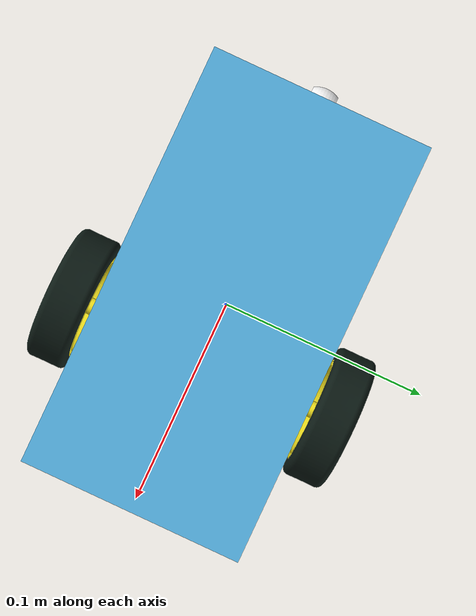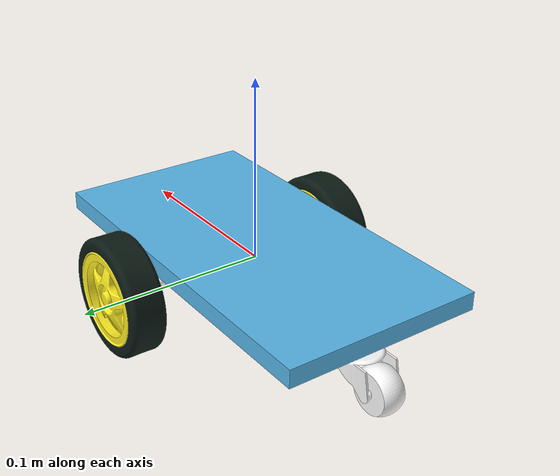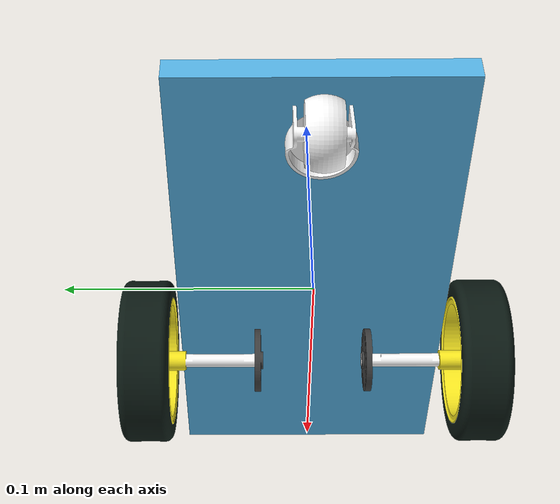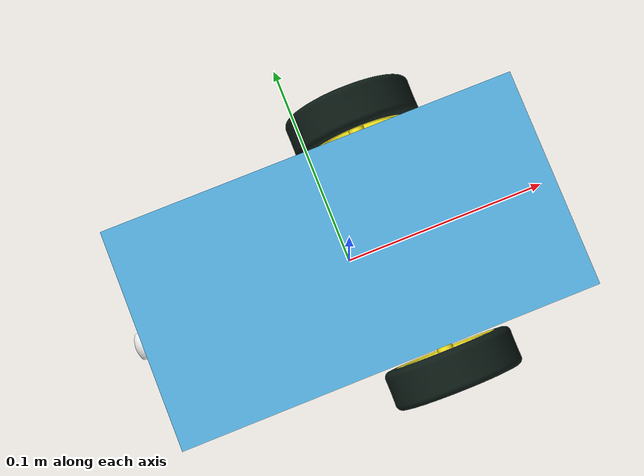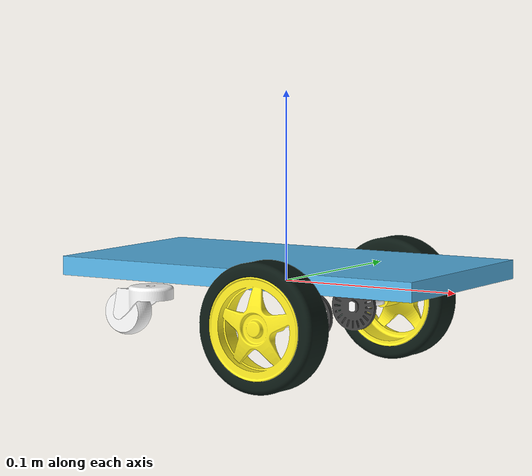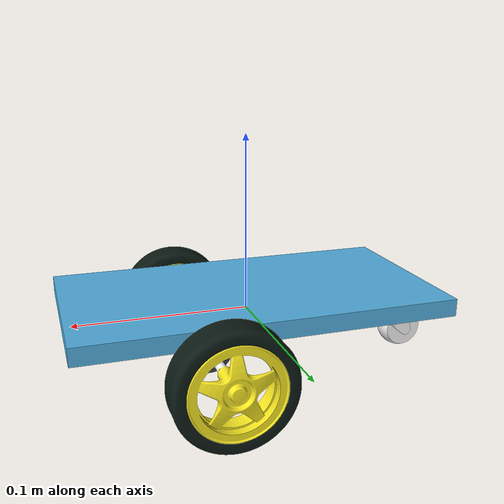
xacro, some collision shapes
<?xml version="1.0"?>

<robot xmlns:xacro="http://ros.org/wiki/xacro"  name="littlebot">

  <!-- Default arguments -->
  <xacro:arg name="use_sim" default="false" />
  <xacro:arg name="prefix" default="littlebot" />

  <!-- Included URDF XACRO Files -->
  <xacro:include filename="$(find littlebot_description)/urdf/littlebot_body.urdf.xacro" />
  <xacro:include filename="$(find littlebot_description)/urdf/littlebot_wheel.urdf.xacro" />

  <!-- Included GAZEBO XACRO Files -->
  <xacro:include filename="$(find littlebot_description)/gazebo/littlebot.gazebo.xacro" />

  <!-- Included ROS2_CONTROL XACRO Files -->
  <xacro:include filename="$(find littlebot_description)/ros2_control/littlebot.ros2_control.xacro" />

  <!-- Littlebot's robot description -->
  <!-- Body model -->
  <xacro:littlebot_body />

  <!-- Whells models -->
  <xacro:littlebot_wheel side_wheel="left">
    <origin xyz="0.0 0 0" rpy="0 0 0"/>
    <origin xyz="0.0281 0.067 -0.01425" rpy="0 0 0" />
  </xacro:littlebot_wheel>

  <xacro:littlebot_wheel side_wheel="right">
    <origin xyz="0 0 0" rpy="0 0 3.142"/>
    <origin xyz="0.0281 -0.067 -0.01425" rpy="0 0 0" />
  </xacro:littlebot_wheel>

  <!-- Sonar models-->

  <!-- Load Gazebo plugins -->
  <xacro:if value="$(arg use_sim)">
    <xacro:littlebot_gazebo/>
  </xacro:if>

  <!-- Load ROS2 Control plugins -->
  <xacro:unless value="$(arg use_sim)">
    <xacro:littlebot_control/>
  </xacro:unless>

</robot>

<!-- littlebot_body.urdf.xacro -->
<robot xmlns:xacro="http://ros.org/wiki/xacro"  name="littlebot_body">
  <xacro:macro name="littlebot_body" >

    <!-- Modelagem base_link "link" -->
    <link name="base_link">
    </link>

    <!-- Robot Footprint -->

    <!-- Modelagem chassis_link "link" and "joint"-->
    <link name="chassis_link">
      <visual>
        <origin xyz="0 0 0" rpy="0 0 0" />
        <geometry>
          <mesh filename="file://$(find littlebot_description)/meshes/littlebot.dae" />
        </geometry>
      </visual>

      <collision>
        <origin xyz="0 0 0.007" rpy="0 0 0" />
        <geometry>
          <box size="0.21 0.11 0.01"/>
        </geometry>
      </collision>

      <inertial>
        <origin xyz="0 0 0" rpy="0 0 0"/>
        <mass value="0.19357368"/>
        <inertia ixx="1.84569610e-4"  ixy="-4.09475462e-6"  ixz="-2.91063667e-5"
                                      iyy="7.65700035e-4"   iyz="2.32776537e-8"
                                                            izz="9.00861891e-4" />
      </inertial>
    </link>

    <joint name="base_link_to_chassis_link" type="fixed">
      <parent link="base_link"/>
      <child link="chassis_link"/>
      <origin xyz="0.0 0.0 0.0" rpy="0 0 0" />
    </joint>

    <!-- Modelagem caster wheel-->
    <link name="caster">
      <visual>
        <origin xyz="0 0 0" rpy="3.14 0 3.14" />
        <geometry>
          <mesh filename="file://$(find littlebot_description)/meshes/Caster_Wheel_Plate.dae" />
        </geometry>
      </visual>

      <collision>
        <origin xyz="0 0 0.0" rpy="3.14 0 3.14" />
        <geometry>
          <box size="0.21 0.11 0.01"/>
        </geometry>
      </collision>

      <inertial>
        <origin xyz="0 0 0" rpy="3.14 0 3.14"/>
        <mass value="0.01"/>
        <inertia ixx="8.4e-7" ixy="-1.571e-14"  ixz="-1.601e-7"
                              iyy="8.4e-7"      iyz="1.55e-14"
                                                izz="1.304e-6" />
      </inertial>
    </link>

    <joint name="chassis_link_to_caster" type="continuous">
      <parent link="chassis_link"/>
      <child link="caster"/>
      <origin xyz="-0.0871 0.0 -0.00875" rpy="0 0 0" />
      <axis xyz="0 0 1" rpy="0 0 0" />
    </joint>

    <!-- Modelagem free wheel-->
    <link name="free_wheel">
      <visual>
        <origin xyz="0 0 0" rpy="0 0 0" />
        <geometry>
          <mesh filename="file://$(find littlebot_description)/meshes/Wheel.dae" />
        </geometry>
      </visual>

      <collision>
        <origin xyz="0 0 0" rpy="0 0 0" />
        <geometry>
          <box size="0.21 0.11 0.01"/>
        </geometry>
      </collision>

      <inertial>
        <origin xyz="0 0 0" rpy="0 0 0"/>
        <mass value="0.007"/>
        <inertia ixx="3.6e-7" ixy="0"         ixz="0"
                              iyy="5.344e-7"  iyz="0"
                                              izz="3.569e-7" />
      </inertial>
    </link>

    <joint name="caster_to_free_wheel" type="continuous">
      <parent link="caster"/>
      <child link="free_wheel"/>
      <origin xyz="-0.015 0 -0.015" rpy="0 0 0" />
      <axis xyz="0 1 0" rpy="0 0 0" />
    </joint>

    <!-- Modelagem da IMU MPU-6050 "link" "joint" -->
    <link name="imu_link">
      <visual>
        <origin xyz="0 0 0" rpy="0 0 0" />
        <geometry>
          <mesh filename="file://$(find littlebot_description)/meshes/MPU_6050.dae" />
        </geometry>
      </visual>
      <collision>
        <origin xyz="0 0 0" rpy="0 0 0" />
        <geometry>
          <box size="0.21 0.11 0.01"/>
        </geometry>
      </collision>
      <inertial>
        <origin xyz="0 0 0" rpy="0 0 0"/>
        <mass value="0.00142672"/>
        <inertia ixx="4.54052487e-8"  ixy="1.07305074e-10"  ixz="-2.17782593e-10"
                                      iyy="2.70451174e-8"   iyz="-4.58999382e-11"
                                                            izz="7.14041804e-8" />
      </inertial>
    </link>

    <joint name="chassis_link_to_imu" type="fixed">
      <parent link="chassis_link"/>
      <child link="imu_link"/>
      <origin xyz="0.028 0.0 0.005" rpy="0 0 0" />
    </joint>
  </xacro:macro>
</robot>

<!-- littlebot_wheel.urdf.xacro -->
<robot name="littlebot_wheel" xmlns:xacro="http://ros.org/wiki/xacro" >
  <xacro:macro name="littlebot_wheel" params="side_wheel *mesh_wheel_pose *joint_wheel_pose">
    <link name="${side_wheel}_wheel">
      <visual>
        <xacro:insert_block name="mesh_wheel_pose"/>
        <geometry>
          <mesh filename="file://$(find littlebot_description)/meshes/roda.dae" />
        </geometry>
      </visual>
      <collision>
        <origin xyz="0 0 0" rpy="1.571 0 0" />
        <geometry>
          <cylinder length="0.018" radius="0.03298"/>
        </geometry>
      </collision>
      <inertial>
        <origin xyz="0 0 0" rpy="0 0 1.571" />
        <mass value="0.041"/>
        <inertia ixx="2.967e-5" ixy="-7.675e-15"  ixz="-4.765e-14"
                                iyy="1.616e-5"    iyz="-1.121e-16"
                                                  izz="1.616e-5" />
      </inertial>
    </link>

    <joint name="base_to_${side_wheel}_wheel" type="continuous">
      <parent link="chassis_link"/>
      <child link="${side_wheel}_wheel"/>
      <xacro:insert_block name="joint_wheel_pose"/>
      <axis xyz="0 1 0" rpy="0 0 0" />
    </joint>

    <gazebo reference="${side_wheel}_wheel">
      <mu1 value="1000.0"/>
      <mu2 value="1.0"/>
      <kp value="10000000.0" />
      <kd value="1.0" />
      <fdir1 value="1 0 0"/>
    </gazebo>
  </xacro:macro>
</robot>
